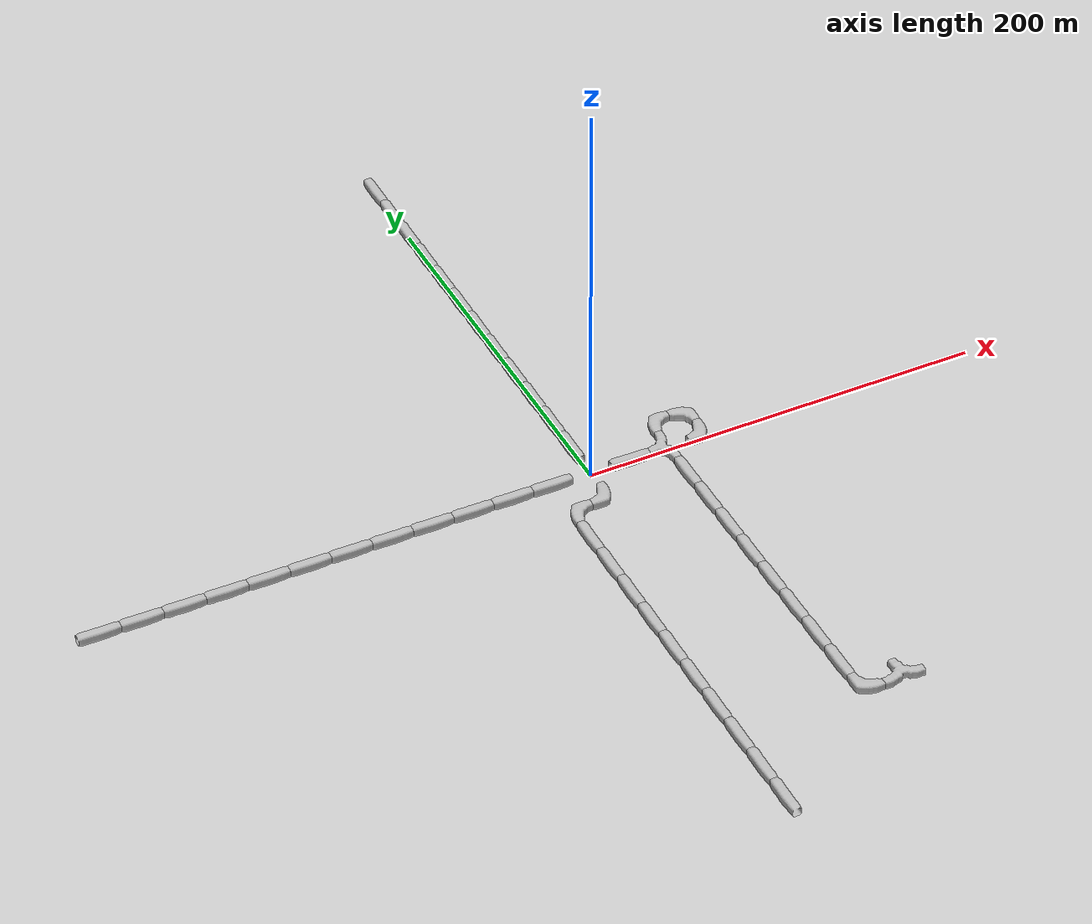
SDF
<sdf version="1.6">
 <world name="cave_1000_32">
  <include>
   <static>true</static>
   <name>cave_1_0</name>
   <pose>20 0 0 0 0 1.5707963267948966</pose>
   <uri>model://cave_straight_20m</uri>
  </include>
  <include>
   <static>true</static>
   <name>cave_2_0</name>
   <pose>40 0 0 0 0 1.5707963267948966</pose>
   <uri>model://cave_3way_20m</uri>
  </include>
  <include>
   <static>true</static>
   <name>cave_2_-1</name>
   <pose>40 -20 0 0 0 0.0</pose>
   <uri>model://cave_straight_20m</uri>
  </include>
  <include>
   <static>true</static>
   <name>cave_2_-2</name>
   <pose>40 -40 0 0 0 0.0</pose>
   <uri>model://cave_straight_20m</uri>
  </include>
  <include>
   <static>true</static>
   <name>cave_2_-3</name>
   <pose>40 -60 0 0 0 0.0</pose>
   <uri>model://cave_straight_20m</uri>
  </include>
  <include>
   <static>true</static>
   <name>cave_2_-4</name>
   <pose>40 -80 0 0 0 0.0</pose>
   <uri>model://cave_straight_20m</uri>
  </include>
  <include>
   <static>true</static>
   <name>cave_2_-5</name>
   <pose>40 -100 0 0 0 0.0</pose>
   <uri>model://cave_straight_20m</uri>
  </include>
  <include>
   <static>true</static>
   <name>cave_2_-6</name>
   <pose>40 -120 0 0 0 0.0</pose>
   <uri>model://cave_straight_20m</uri>
  </include>
  <include>
   <static>true</static>
   <name>cave_2_-7</name>
   <pose>40 -140 0 0 0 0.0</pose>
   <uri>model://cave_straight_20m</uri>
  </include>
  <include>
   <static>true</static>
   <name>cave_2_-8</name>
   <pose>40 -160 0 0 0 0.0</pose>
   <uri>model://cave_straight_20m</uri>
  </include>
  <include>
   <static>true</static>
   <name>cave_2_-9</name>
   <pose>40 -180 0 0 0 0.0</pose>
   <uri>model://cave_L_20m</uri>
  </include>
  <include>
   <static>true</static>
   <name>cave_3_-9</name>
   <pose>60 -180 0 0 0 0.0</pose>
   <uri>model://cave_3way_20m</uri>
  </include>
  <include>
   <static>true</static>
   <name>cave_2_1</name>
   <pose>40 20 0 0 0 -1.5707963267948966</pose>
   <uri>model://cave_L_20m</uri>
  </include>
  <include>
   <static>true</static>
   <name>cave_3_1</name>
   <pose>60 20 0 0 0 3.141592653589793</pose>
   <uri>model://cave_L_20m</uri>
  </include>
  <include>
   <static>true</static>
   <name>cave_3_0</name>
   <pose>60 0 0 0 0 1.5707963267948966</pose>
   <uri>model://cave_L_20m</uri>
  </include>
  <include>
   <static>true</static>
   <name>cave_0_-1</name>
   <pose>0 -20 0 0 0 1.5707963267948966</pose>
   <uri>model://cave_L_20m</uri>
  </include>
  <include>
   <static>true</static>
   <name>cave_-1_-1</name>
   <pose>-20 -20 0 0 0 -1.5707963267948966</pose>
   <uri>model://cave_L_20m</uri>
  </include>
  <include>
   <static>true</static>
   <name>cave_-1_-2</name>
   <pose>-20 -40 0 0 0 0.0</pose>
   <uri>model://cave_straight_20m</uri>
  </include>
  <include>
   <static>true</static>
   <name>cave_-1_-3</name>
   <pose>-20 -60 0 0 0 0.0</pose>
   <uri>model://cave_straight_20m</uri>
  </include>
  <include>
   <static>true</static>
   <name>cave_-1_-4</name>
   <pose>-20 -80 0 0 0 0.0</pose>
   <uri>model://cave_straight_20m</uri>
  </include>
  <include>
   <static>true</static>
   <name>cave_-1_-5</name>
   <pose>-20 -100 0 0 0 0.0</pose>
   <uri>model://cave_straight_20m</uri>
  </include>
  <include>
   <static>true</static>
   <name>cave_-1_-6</name>
   <pose>-20 -120 0 0 0 0.0</pose>
   <uri>model://cave_straight_20m</uri>
  </include>
  <include>
   <static>true</static>
   <name>cave_-1_-7</name>
   <pose>-20 -140 0 0 0 0.0</pose>
   <uri>model://cave_straight_20m</uri>
  </include>
  <include>
   <static>true</static>
   <name>cave_-1_-8</name>
   <pose>-20 -160 0 0 0 0.0</pose>
   <uri>model://cave_straight_20m</uri>
  </include>
  <include>
   <static>true</static>
   <name>cave_-1_-9</name>
   <pose>-20 -180 0 0 0 0.0</pose>
   <uri>model://cave_straight_20m</uri>
  </include>
  <include>
   <static>true</static>
   <name>cave_-1_-10</name>
   <pose>-20 -200 0 0 0 0.0</pose>
   <uri>model://cave_straight_20m</uri>
  </include>
  <include>
   <static>true</static>
   <name>cave_-1_-11</name>
   <pose>-20 -220 0 0 0 0.0</pose>
   <uri>model://cave_straight_20m</uri>
  </include>
  <include>
   <static>true</static>
   <name>cave_-1_0</name>
   <pose>-20 0 0 0 0 1.5707963267948966</pose>
   <uri>model://cave_straight_20m</uri>
  </include>
  <include>
   <static>true</static>
   <name>cave_-2_0</name>
   <pose>-40 0 0 0 0 1.5707963267948966</pose>
   <uri>model://cave_straight_20m</uri>
  </include>
  <include>
   <static>true</static>
   <name>cave_-3_0</name>
   <pose>-60 0 0 0 0 1.5707963267948966</pose>
   <uri>model://cave_straight_20m</uri>
  </include>
  <include>
   <static>true</static>
   <name>cave_-4_0</name>
   <pose>-80 0 0 0 0 1.5707963267948966</pose>
   <uri>model://cave_straight_20m</uri>
  </include>
  <include>
   <static>true</static>
   <name>cave_-5_0</name>
   <pose>-100 0 0 0 0 1.5707963267948966</pose>
   <uri>model://cave_straight_20m</uri>
  </include>
  <include>
   <static>true</static>
   <name>cave_-6_0</name>
   <pose>-120 0 0 0 0 1.5707963267948966</pose>
   <uri>model://cave_straight_20m</uri>
  </include>
  <include>
   <static>true</static>
   <name>cave_-7_0</name>
   <pose>-140 0 0 0 0 1.5707963267948966</pose>
   <uri>model://cave_straight_20m</uri>
  </include>
  <include>
   <static>true</static>
   <name>cave_-8_0</name>
   <pose>-160 0 0 0 0 1.5707963267948966</pose>
   <uri>model://cave_straight_20m</uri>
  </include>
  <include>
   <static>true</static>
   <name>cave_-9_0</name>
   <pose>-180 0 0 0 0 1.5707963267948966</pose>
   <uri>model://cave_straight_20m</uri>
  </include>
  <include>
   <static>true</static>
   <name>cave_-10_0</name>
   <pose>-200 0 0 0 0 1.5707963267948966</pose>
   <uri>model://cave_straight_20m</uri>
  </include>
  <include>
   <static>true</static>
   <name>cave_-11_0</name>
   <pose>-220 0 0 0 0 1.5707963267948966</pose>
   <uri>model://cave_straight_20m</uri>
  </include>
  <include>
   <static>true</static>
   <name>cave_-12_0</name>
   <pose>-240 0 0 0 0 1.5707963267948966</pose>
   <uri>model://cave_straight_20m</uri>
  </include>
  <include>
   <static>true</static>
   <name>cave_0_1</name>
   <pose>0 20 0 0 0 0.0</pose>
   <uri>model://cave_straight_20m</uri>
  </include>
  <include>
   <static>true</static>
   <name>cave_0_2</name>
   <pose>0 40 0 0 0 0.0</pose>
   <uri>model://cave_straight_20m</uri>
  </include>
  <include>
   <static>true</static>
   <name>cave_0_3</name>
   <pose>0 60 0 0 0 0.0</pose>
   <uri>model://cave_straight_20m</uri>
  </include>
  <include>
   <static>true</static>
   <name>cave_0_4</name>
   <pose>0 80 0 0 0 0.0</pose>
   <uri>model://cave_straight_20m</uri>
  </include>
  <include>
   <static>true</static>
   <name>cave_0_5</name>
   <pose>0 100 0 0 0 0.0</pose>
   <uri>model://cave_straight_20m</uri>
  </include>
  <include>
   <static>true</static>
   <name>cave_0_6</name>
   <pose>0 120 0 0 0 0.0</pose>
   <uri>model://cave_straight_20m</uri>
  </include>
  <include>
   <static>true</static>
   <name>cave_0_7</name>
   <pose>0 140 0 0 0 0.0</pose>
   <uri>model://cave_straight_20m</uri>
  </include>
  <include>
   <static>true</static>
   <name>cave_0_8</name>
   <pose>0 160 0 0 0 0.0</pose>
   <uri>model://cave_straight_20m</uri>
  </include>
  <include>
   <static>true</static>
   <name>cave_0_9</name>
   <pose>0 180 0 0 0 0.0</pose>
   <uri>model://cave_straight_20m</uri>
  </include>
  <include>
   <static>true</static>
   <name>cave_0_10</name>
   <pose>0 200 0 0 0 0.0</pose>
   <uri>model://cave_straight_20m</uri>
  </include>
  <include>
   <static>true</static>
   <name>cave_0_11</name>
   <pose>0 220 0 0 0 0.0</pose>
   <uri>model://cave_straight_20m</uri>
  </include>
  <include>
   <static>true</static>
   <name>cave_0_12</name>
   <pose>0 240 0 0 0 0.0</pose>
   <uri>model://cave_straight_20m</uri>
  </include>
 </world>
</sdf>

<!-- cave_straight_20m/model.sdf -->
<sdf version="1.6">
  <model name="cave_straight_20m">
    <static>true</static>
    <link name="base">
      <pose>0 0 0 0 0 0</pose>
      <collision name="base_collision">
        <pose>0 0 0 0 0 0</pose>
        <geometry>
          <mesh>
            <uri>model://cave_straight_20m/meshes/cave_straight_20m.dae</uri>
          </mesh>
        </geometry>
        <surface>
          <contact>
             <collide_bitmask>0xffff</collide_bitmask>
          </contact>
          <friction>
            <ode>
              <mu>100</mu>
              <mu2>50</mu2>
            </ode>
          </friction>
        </surface>
      </collision>
      <visual name="base_visual">
        <pose>0 0 0 0 0 0</pose>
        <cast_shadows>false</cast_shadows>
        <geometry>
          <mesh>
            <uri>model://cave_straight_20m/meshes/cave_straight_20m.dae</uri>
          </mesh>
        </geometry>
      </visual>
    </link>
  </model>
</sdf>

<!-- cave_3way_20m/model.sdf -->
<sdf version="1.6">
  <model name="cave_3way_20m">
    <static>true</static>
    <link name="base">
      <pose>0 0 0 0 0 0</pose>
      <collision name="base_collision">
        <pose>0 0 0 0 0 0</pose>
        <geometry>
          <mesh>
            <uri>model://cave_3way_20m/meshes/cave_3way_20m.dae</uri>
          </mesh>
        </geometry>
        <surface>
          <contact>
             <collide_bitmask>0xffff</collide_bitmask>
          </contact>
          <friction>
            <ode>
              <mu>100</mu>
              <mu2>50</mu2>
            </ode>
          </friction>
        </surface>
      </collision>
      <visual name="base_visual">
        <cast_shadows>false</cast_shadows>
        <pose>0 0 0 0 0 0</pose>
        <geometry>
          <mesh>
            <uri>model://cave_3way_20m/meshes/cave_3way_20m.dae</uri>
          </mesh>
        </geometry>
      </visual>
    </link>
  </model>
</sdf>

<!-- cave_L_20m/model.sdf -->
<sdf version="1.6">
  <model name="cave_L_20m">
    <static>true</static>
    <link name="base">
      <pose>0 0 0 0 0 0</pose>
      <collision name="base_collision">
        <pose>0 0 0 0 0 0</pose>
        <geometry>
          <mesh>
            <uri>model://cave_L_20m/meshes/cave_L_20m.dae</uri>
          </mesh>
        </geometry>
        <surface>
          <contact>
             <collide_bitmask>0xffff</collide_bitmask>
          </contact>
          <friction>
            <ode>
              <mu>100</mu>
              <mu2>50</mu2>
            </ode>
          </friction>
        </surface>
      </collision>
      <visual name="base_visual">
        <pose>0 0 0 0 0 0</pose>
        <cast_shadows>false</cast_shadows>
        <geometry>
          <mesh>
            <uri>model://cave_L_20m/meshes/cave_L_20m.dae</uri>
          </mesh>
        </geometry>
      </visual>
    </link>
  </model>
</sdf>
